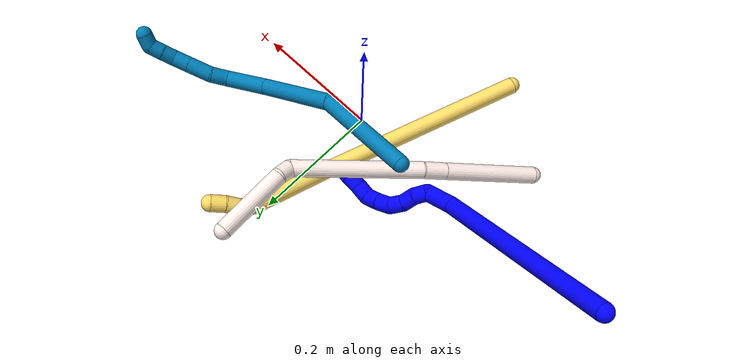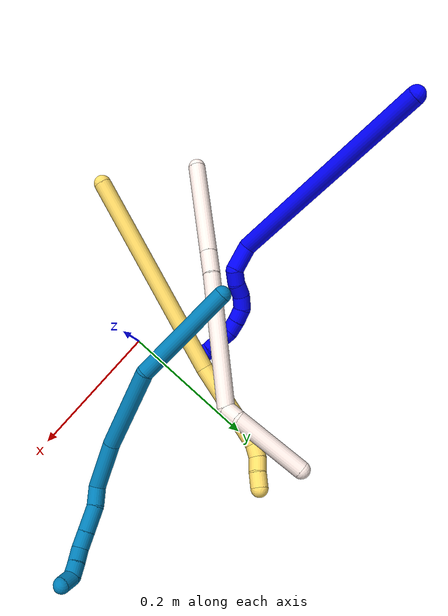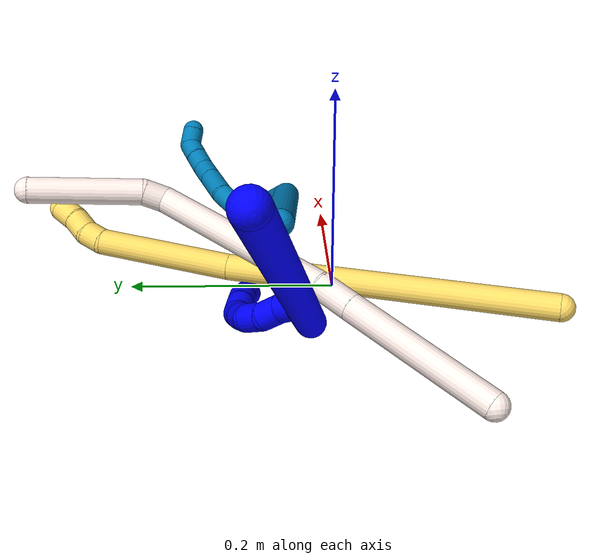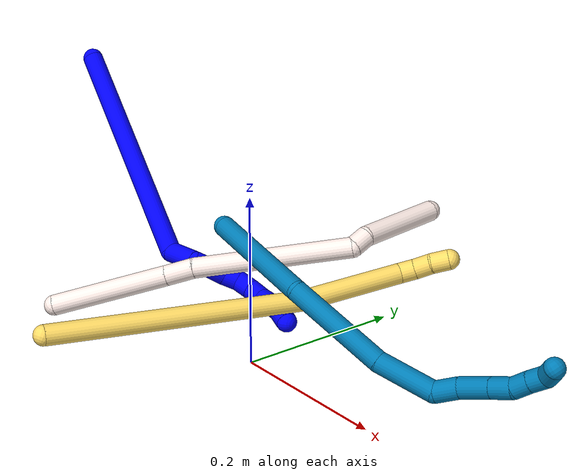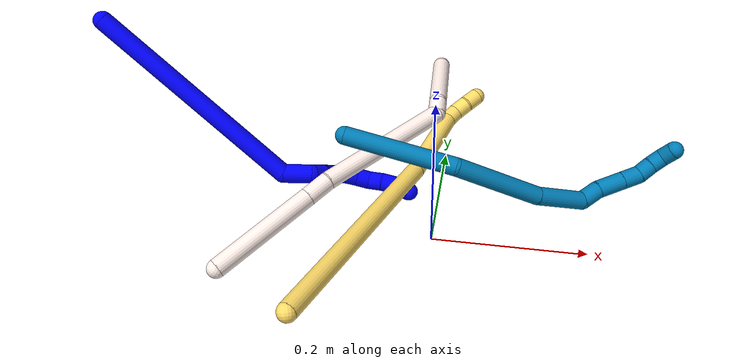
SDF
<sdf version="1.7">
 <world name="default">
  <model name="1">
   <static>0</static>
   <link name="1">
    <collision name="collision-cylinder-e_1_1_4">
     <pose>0.099642 0.033256 -0.108377 -2.84386 0.721064 -2.38436</pose>
     <geometry><cylinder><radius>0.0125</radius><length>0.301861</length></cylinder></geometry>
     <surface>
      <friction><ode><mu>1.16</mu><mu2>1.16</mu2><slip1>0</slip1><slip2>0</slip2></ode></friction>
      <contact><ode><kp>1e+06</kp><kd>1</kd><max_vel>0</max_vel><min_depth>0.001</min_depth></ode></contact>
     </surface>
    </collision>
    <visual name="visual-cylinder-e_1_1_4">
     <pose>0.099642 0.033256 -0.108377 -2.84386 0.721064 -2.38436</pose>
     <geometry><cylinder><radius>0.0125</radius><length>0.301861</length></cylinder></geometry>
     <material><ambient>0 0 1 1</ambient></material>
    </visual>
    <collision name="collision-cylinder-e_2_4_5">
     <pose>0.200756 0.066205 -0.235702 3.12536 0.077501 2.72889</pose>
     <geometry><cylinder><radius>0.0125</radius><length>0.038016</length></cylinder></geometry>
     <surface>
      <friction><ode><mu>1.16</mu><mu2>1.16</mu2><slip1>0</slip1><slip2>0</slip2></ode></friction>
      <contact><ode><kp>1e+06</kp><kd>1</kd><max_vel>0</max_vel><min_depth>0.001</min_depth></ode></contact>
     </surface>
    </collision>
    <visual name="visual-cylinder-e_2_4_5">
     <pose>0.200756 0.066205 -0.235702 3.12536 0.077501 2.72889</pose>
     <geometry><cylinder><radius>0.0125</radius><length>0.038016</length></cylinder></geometry>
     <material><ambient>0 0 1 1</ambient></material>
    </visual>
    <collision name="collision-cylinder-e_3_5_6">
     <pose>0.20568 0.059668 -0.261686 2.41683 0.352125 0.877498</pose>
     <geometry><cylinder><radius>0.0125</radius><length>0.020023</length></cylinder></geometry>
     <surface>
      <friction><ode><mu>1.16</mu><mu2>1.16</mu2><slip1>0</slip1><slip2>0</slip2></ode></friction>
      <contact><ode><kp>1e+06</kp><kd>1</kd><max_vel>0</max_vel><min_depth>0.001</min_depth></ode></contact>
     </surface>
    </collision>
    <visual name="visual-cylinder-e_3_5_6">
     <pose>0.20568 0.059668 -0.261686 2.41683 0.352125 0.877498</pose>
     <geometry><cylinder><radius>0.0125</radius><length>0.020023</length></cylinder></geometry>
     <material><ambient>0 0 1 1</ambient></material>
    </visual>
    <collision name="collision-cylinder-e_4_6_7">
     <pose>0.213589 0.045854 -0.273549 2.1377 0.460124 0.80669</pose>
     <geometry><cylinder><radius>0.0125</radius><length>0.020069</length></cylinder></geometry>
     <surface>
      <friction><ode><mu>1.16</mu><mu2>1.16</mu2><slip1>0</slip1><slip2>0</slip2></ode></friction>
      <contact><ode><kp>1e+06</kp><kd>1</kd><max_vel>0</max_vel><min_depth>0.001</min_depth></ode></contact>
     </surface>
    </collision>
    <visual name="visual-cylinder-e_4_6_7">
     <pose>0.213589 0.045854 -0.273549 2.1377 0.460124 0.80669</pose>
     <geometry><cylinder><radius>0.0125</radius><length>0.020069</length></cylinder></geometry>
     <material><ambient>0 0 1 1</ambient></material>
    </visual>
    <collision name="collision-cylinder-e_5_7_8">
     <pose>0.221045 0.03243 -0.285928 2.48332 0.3046 0.844664</pose>
     <geometry><cylinder><radius>0.0125</radius><length>0.020012</length></cylinder></geometry>
     <surface>
      <friction><ode><mu>1.16</mu><mu2>1.16</mu2><slip1>0</slip1><slip2>0</slip2></ode></friction>
      <contact><ode><kp>1e+06</kp><kd>1</kd><max_vel>0</max_vel><min_depth>0.001</min_depth></ode></contact>
     </surface>
    </collision>
    <visual name="visual-cylinder-e_5_7_8">
     <pose>0.221045 0.03243 -0.285928 2.48332 0.3046 0.844664</pose>
     <geometry><cylinder><radius>0.0125</radius><length>0.020012</length></cylinder></geometry>
     <material><ambient>0 0 1 1</ambient></material>
    </visual>
    <collision name="collision-cylinder-e_6_8_9">
     <pose>0.227448 0.025415 -0.302818 3.0164 0.346748 2.45424</pose>
     <geometry><cylinder><radius>0.0125</radius><length>0.020017</length></cylinder></geometry>
     <surface>
      <friction><ode><mu>1.16</mu><mu2>1.16</mu2><slip1>0</slip1><slip2>0</slip2></ode></friction>
      <contact><ode><kp>1e+06</kp><kd>1</kd><max_vel>0</max_vel><min_depth>0.001</min_depth></ode></contact>
     </surface>
    </collision>
    <visual name="visual-cylinder-e_6_8_9">
     <pose>0.227448 0.025415 -0.302818 3.0164 0.346748 2.45424</pose>
     <geometry><cylinder><radius>0.0125</radius><length>0.020017</length></cylinder></geometry>
     <material><ambient>0 0 1 1</ambient></material>
    </visual>
    <collision name="collision-cylinder-e_7_9_10">
     <pose>0.234321 0.024109 -0.321536 3.12766 0.354521 3.06387</pose>
     <geometry><cylinder><radius>0.0125</radius><length>0.020002</length></cylinder></geometry>
     <surface>
      <friction><ode><mu>1.16</mu><mu2>1.16</mu2><slip1>0</slip1><slip2>0</slip2></ode></friction>
      <contact><ode><kp>1e+06</kp><kd>1</kd><max_vel>0</max_vel><min_depth>0.001</min_depth></ode></contact>
     </surface>
    </collision>
    <visual name="visual-cylinder-e_7_9_10">
     <pose>0.234321 0.024109 -0.321536 3.12766 0.354521 3.06387</pose>
     <geometry><cylinder><radius>0.0125</radius><length>0.020002</length></cylinder></geometry>
     <material><ambient>0 0 1 1</ambient></material>
    </visual>
    <collision name="collision-cylinder-e_8_10_11">
     <pose>0.238072 0.027465 -0.340283 -2.78532 0.027963 -0.155014</pose>
     <geometry><cylinder><radius>0.0125</radius><length>0.02</length></cylinder></geometry>
     <surface>
      <friction><ode><mu>1.16</mu><mu2>1.16</mu2><slip1>0</slip1><slip2>0</slip2></ode></friction>
      <contact><ode><kp>1e+06</kp><kd>1</kd><max_vel>0</max_vel><min_depth>0.001</min_depth></ode></contact>
     </surface>
    </collision>
    <visual name="visual-cylinder-e_8_10_11">
     <pose>0.238072 0.027465 -0.340283 -2.78532 0.027963 -0.155014</pose>
     <geometry><cylinder><radius>0.0125</radius><length>0.02</length></cylinder></geometry>
     <material><ambient>0 0 1 1</ambient></material>
    </visual>
    <collision name="collision-cylinder-e_9_11_12">
     <pose>0.240265 0.033711 -0.359071 -2.85666 0.192472 -1.18474</pose>
     <geometry><cylinder><radius>0.0125</radius><length>0.02</length></cylinder></geometry>
     <surface>
      <friction><ode><mu>1.16</mu><mu2>1.16</mu2><slip1>0</slip1><slip2>0</slip2></ode></friction>
      <contact><ode><kp>1e+06</kp><kd>1</kd><max_vel>0</max_vel><min_depth>0.001</min_depth></ode></contact>
     </surface>
    </collision>
    <visual name="visual-cylinder-e_9_11_12">
     <pose>0.240265 0.033711 -0.359071 -2.85666 0.192472 -1.18474</pose>
     <geometry><cylinder><radius>0.0125</radius><length>0.02</length></cylinder></geometry>
     <material><ambient>0 0 1 1</ambient></material>
    </visual>
    <collision name="collision-cylinder-e_10_12_2">
     <pose>0.245589 0.04013 -0.377149 -2.7416 0.34809 -1.42901</pose>
     <geometry><cylinder><radius>0.0125</radius><length>0.02</length></cylinder></geometry>
     <surface>
      <friction><ode><mu>1.16</mu><mu2>1.16</mu2><slip1>0</slip1><slip2>0</slip2></ode></friction>
      <contact><ode><kp>1e+06</kp><kd>1</kd><max_vel>0</max_vel><min_depth>0.001</min_depth></ode></contact>
     </surface>
    </collision>
    <visual name="visual-cylinder-e_10_12_2">
     <pose>0.245589 0.04013 -0.377149 -2.7416 0.34809 -1.42901</pose>
     <geometry><cylinder><radius>0.0125</radius><length>0.02</length></cylinder></geometry>
     <material><ambient>0 0 1 1</ambient></material>
    </visual>
    <collision name="collision-sphere-2">
     <pose>0.249 0.043791 -0.385807 0 -0 0</pose>
     <geometry><sphere><radius>0.0125</radius></sphere></geometry>
     <surface>
      <friction><ode><mu>1.16</mu><mu2>1.16</mu2><slip1>0</slip1><slip2>0</slip2></ode></friction>
      <contact><ode><kp>1e+06</kp><kd>1</kd><max_vel>0</max_vel><min_depth>0.001</min_depth></ode></contact>
     </surface>
    </collision>
    <visual name="visual-sphere-2">
     <pose>0.249 0.043791 -0.385807 0 -0 0</pose>
     <geometry><sphere><radius>0.0125</radius></sphere></geometry>
     <material><ambient>0 0 1 1</ambient></material>
    </visual>
    <collision name="collision-sphere-12">
     <pose>0.242178 0.03647 -0.36849 0 -0 0</pose>
     <geometry><sphere><radius>0.0125</radius></sphere></geometry>
     <surface>
      <friction><ode><mu>1.16</mu><mu2>1.16</mu2><slip1>0</slip1><slip2>0</slip2></ode></friction>
      <contact><ode><kp>1e+06</kp><kd>1</kd><max_vel>0</max_vel><min_depth>0.001</min_depth></ode></contact>
     </surface>
    </collision>
    <visual name="visual-sphere-12">
     <pose>0.242178 0.03647 -0.36849 0 -0 0</pose>
     <geometry><sphere><radius>0.0125</radius></sphere></geometry>
     <material><ambient>0 0 1 1</ambient></material>
    </visual>
    <collision name="collision-sphere-11">
     <pose>0.238352 0.030952 -0.349651 0 -0 0</pose>
     <geometry><sphere><radius>0.0125</radius></sphere></geometry>
     <surface>
      <friction><ode><mu>1.16</mu><mu2>1.16</mu2><slip1>0</slip1><slip2>0</slip2></ode></friction>
      <contact><ode><kp>1e+06</kp><kd>1</kd><max_vel>0</max_vel><min_depth>0.001</min_depth></ode></contact>
     </surface>
    </collision>
    <visual name="visual-sphere-11">
     <pose>0.238352 0.030952 -0.349651 0 -0 0</pose>
     <geometry><sphere><radius>0.0125</radius></sphere></geometry>
     <material><ambient>0 0 1 1</ambient></material>
    </visual>
    <collision name="collision-sphere-10">
     <pose>0.237793 0.023979 -0.330914 0 -0 0</pose>
     <geometry><sphere><radius>0.0125</radius></sphere></geometry>
     <surface>
      <friction><ode><mu>1.16</mu><mu2>1.16</mu2><slip1>0</slip1><slip2>0</slip2></ode></friction>
      <contact><ode><kp>1e+06</kp><kd>1</kd><max_vel>0</max_vel><min_depth>0.001</min_depth></ode></contact>
     </surface>
    </collision>
    <visual name="visual-sphere-10">
     <pose>0.237793 0.023979 -0.330914 0 -0 0</pose>
     <geometry><sphere><radius>0.0125</radius></sphere></geometry>
     <material><ambient>0 0 1 1</ambient></material>
    </visual>
    <collision name="collision-sphere-9">
     <pose>0.230849 0.02424 -0.312158 0 -0 0</pose>
     <geometry><sphere><radius>0.0125</radius></sphere></geometry>
     <surface>
      <friction><ode><mu>1.16</mu><mu2>1.16</mu2><slip1>0</slip1><slip2>0</slip2></ode></friction>
      <contact><ode><kp>1e+06</kp><kd>1</kd><max_vel>0</max_vel><min_depth>0.001</min_depth></ode></contact>
     </surface>
    </collision>
    <visual name="visual-sphere-9">
     <pose>0.230849 0.02424 -0.312158 0 -0 0</pose>
     <geometry><sphere><radius>0.0125</radius></sphere></geometry>
     <material><ambient>0 0 1 1</ambient></material>
    </visual>
    <collision name="collision-sphere-4">
     <pose>0.199284 0.066513 -0.216754 0 -0 0</pose>
     <geometry><sphere><radius>0.0125</radius></sphere></geometry>
     <surface>
      <friction><ode><mu>1.16</mu><mu2>1.16</mu2><slip1>0</slip1><slip2>0</slip2></ode></friction>
      <contact><ode><kp>1e+06</kp><kd>1</kd><max_vel>0</max_vel><min_depth>0.001</min_depth></ode></contact>
     </surface>
    </collision>
    <visual name="visual-sphere-4">
     <pose>0.199284 0.066513 -0.216754 0 -0 0</pose>
     <geometry><sphere><radius>0.0125</radius></sphere></geometry>
     <material><ambient>0 0 1 1</ambient></material>
    </visual>
    <collision name="collision-sphere-1">
     <geometry><sphere><radius>0.0125</radius></sphere></geometry>
     <surface>
      <friction><ode><mu>1.16</mu><mu2>1.16</mu2><slip1>0</slip1><slip2>0</slip2></ode></friction>
      <contact><ode><kp>1e+06</kp><kd>1</kd><max_vel>0</max_vel><min_depth>0.001</min_depth></ode></contact>
     </surface>
    </collision>
    <visual name="visual-sphere-1">
     <geometry><sphere><radius>0.0125</radius></sphere></geometry>
     <material><ambient>0 0 1 1</ambient></material>
    </visual>
    <collision name="collision-sphere-8">
     <pose>0.224046 0.026591 -0.293479 0 -0 0</pose>
     <geometry><sphere><radius>0.0125</radius></sphere></geometry>
     <surface>
      <friction><ode><mu>1.16</mu><mu2>1.16</mu2><slip1>0</slip1><slip2>0</slip2></ode></friction>
      <contact><ode><kp>1e+06</kp><kd>1</kd><max_vel>0</max_vel><min_depth>0.001</min_depth></ode></contact>
     </surface>
    </collision>
    <visual name="visual-sphere-8">
     <pose>0.224046 0.026591 -0.293479 0 -0 0</pose>
     <geometry><sphere><radius>0.0125</radius></sphere></geometry>
     <material><ambient>0 0 1 1</ambient></material>
    </visual>
    <collision name="collision-sphere-5">
     <pose>0.202227 0.065897 -0.254651 0 -0 0</pose>
     <geometry><sphere><radius>0.0125</radius></sphere></geometry>
     <surface>
      <friction><ode><mu>1.16</mu><mu2>1.16</mu2><slip1>0</slip1><slip2>0</slip2></ode></friction>
      <contact><ode><kp>1e+06</kp><kd>1</kd><max_vel>0</max_vel><min_depth>0.001</min_depth></ode></contact>
     </surface>
    </collision>
    <visual name="visual-sphere-5">
     <pose>0.202227 0.065897 -0.254651 0 -0 0</pose>
     <geometry><sphere><radius>0.0125</radius></sphere></geometry>
     <material><ambient>0 0 1 1</ambient></material>
    </visual>
    <collision name="collision-sphere-6">
     <pose>0.209133 0.053438 -0.268721 0 -0 0</pose>
     <geometry><sphere><radius>0.0125</radius></sphere></geometry>
     <surface>
      <friction><ode><mu>1.16</mu><mu2>1.16</mu2><slip1>0</slip1><slip2>0</slip2></ode></friction>
      <contact><ode><kp>1e+06</kp><kd>1</kd><max_vel>0</max_vel><min_depth>0.001</min_depth></ode></contact>
     </surface>
    </collision>
    <visual name="visual-sphere-6">
     <pose>0.209133 0.053438 -0.268721 0 -0 0</pose>
     <geometry><sphere><radius>0.0125</radius></sphere></geometry>
     <material><ambient>0 0 1 1</ambient></material>
    </visual>
    <collision name="collision-sphere-7">
     <pose>0.218045 0.038269 -0.278378 0 -0 0</pose>
     <geometry><sphere><radius>0.0125</radius></sphere></geometry>
     <surface>
      <friction><ode><mu>1.16</mu><mu2>1.16</mu2><slip1>0</slip1><slip2>0</slip2></ode></friction>
      <contact><ode><kp>1e+06</kp><kd>1</kd><max_vel>0</max_vel><min_depth>0.001</min_depth></ode></contact>
     </surface>
    </collision>
    <visual name="visual-sphere-7">
     <pose>0.218045 0.038269 -0.278378 0 -0 0</pose>
     <geometry><sphere><radius>0.0125</radius></sphere></geometry>
     <material><ambient>0 0 1 1</ambient></material>
    </visual>
    <inertial>
     <pose>0.148513 0.036673 -0.184299 0 -0 0</pose>
     <mass>0.5</mass>
     <inertia>
      <ixx>-0.002426</ixx>
      <ixy>0</ixy>
      <ixz>0</ixz>
      <iyy>0.000731</iyy>
      <iyz>0</iyz>
      <izz>-0.002061</izz>
     </inertia>
    </inertial>
   </link>
   <pose>-0.439238 0.074641 0.245249 1.67638 1.42191 -1.24137</pose>
  </model>
  <model name="5">
   <static>0</static>
   <link name="5">
    <collision name="collision-cylinder-e_1_1_4">
     <pose>0.068675 0.115173 0.075042 -0.993326 0.463318 -0.254319</pose>
     <geometry><cylinder><radius>0.0125</radius><length>0.307326</length></cylinder></geometry>
     <surface>
      <friction><ode><mu>1.16</mu><mu2>1.16</mu2><slip1>0</slip1><slip2>0</slip2></ode></friction>
      <contact><ode><kp>1e+06</kp><kd>1</kd><max_vel>0</max_vel><min_depth>0.001</min_depth></ode></contact>
     </surface>
    </collision>
    <visual name="visual-cylinder-e_1_1_4">
     <pose>0.068675 0.115173 0.075042 -0.993326 0.463318 -0.254319</pose>
     <geometry><cylinder><radius>0.0125</radius><length>0.307326</length></cylinder></geometry>
     <material><ambient>1 0.858824 0.4 1</ambient></material>
    </visual>
    <collision name="collision-cylinder-e_2_4_5">
     <pose>0.16305 0.27503 0.188835 -0.856387 0.4099 -0.189191</pose>
     <geometry><cylinder><radius>0.0125</radius><length>0.128979</length></cylinder></geometry>
     <surface>
      <friction><ode><mu>1.16</mu><mu2>1.16</mu2><slip1>0</slip1><slip2>0</slip2></ode></friction>
      <contact><ode><kp>1e+06</kp><kd>1</kd><max_vel>0</max_vel><min_depth>0.001</min_depth></ode></contact>
     </surface>
    </collision>
    <visual name="visual-cylinder-e_2_4_5">
     <pose>0.16305 0.27503 0.188835 -0.856387 0.4099 -0.189191</pose>
     <geometry><cylinder><radius>0.0125</radius><length>0.128979</length></cylinder></geometry>
     <material><ambient>1 0.858824 0.4 1</ambient></material>
    </visual>
    <collision name="collision-cylinder-e_3_5_6">
     <pose>0.195431 0.324576 0.233328 -0.702649 0.726201 -0.276744</pose>
     <geometry><cylinder><radius>0.0125</radius><length>0.020122</length></cylinder></geometry>
     <surface>
      <friction><ode><mu>1.16</mu><mu2>1.16</mu2><slip1>0</slip1><slip2>0</slip2></ode></friction>
      <contact><ode><kp>1e+06</kp><kd>1</kd><max_vel>0</max_vel><min_depth>0.001</min_depth></ode></contact>
     </surface>
    </collision>
    <visual name="visual-cylinder-e_3_5_6">
     <pose>0.195431 0.324576 0.233328 -0.702649 0.726201 -0.276744</pose>
     <geometry><cylinder><radius>0.0125</radius><length>0.020122</length></cylinder></geometry>
     <material><ambient>1 0.858824 0.4 1</ambient></material>
    </visual>
    <collision name="collision-cylinder-e_4_6_7">
     <pose>0.211011 0.33164 0.244748 -0.369803 0.970529 -0.196622</pose>
     <geometry><cylinder><radius>0.0125</radius><length>0.021568</length></cylinder></geometry>
     <surface>
      <friction><ode><mu>1.16</mu><mu2>1.16</mu2><slip1>0</slip1><slip2>0</slip2></ode></friction>
      <contact><ode><kp>1e+06</kp><kd>1</kd><max_vel>0</max_vel><min_depth>0.001</min_depth></ode></contact>
     </surface>
    </collision>
    <visual name="visual-cylinder-e_4_6_7">
     <pose>0.211011 0.33164 0.244748 -0.369803 0.970529 -0.196622</pose>
     <geometry><cylinder><radius>0.0125</radius><length>0.021568</length></cylinder></geometry>
     <material><ambient>1 0.858824 0.4 1</ambient></material>
    </visual>
    <collision name="collision-cylinder-e_5_7_2">
     <pose>0.228458 0.338052 0.255928 -0.653497 0.889791 -0.320385</pose>
     <geometry><cylinder><radius>0.0125</radius><length>0.022005</length></cylinder></geometry>
     <surface>
      <friction><ode><mu>1.16</mu><mu2>1.16</mu2><slip1>0</slip1><slip2>0</slip2></ode></friction>
      <contact><ode><kp>1e+06</kp><kd>1</kd><max_vel>0</max_vel><min_depth>0.001</min_depth></ode></contact>
     </surface>
    </collision>
    <visual name="visual-cylinder-e_5_7_2">
     <pose>0.228458 0.338052 0.255928 -0.653497 0.889791 -0.320385</pose>
     <geometry><cylinder><radius>0.0125</radius><length>0.022005</length></cylinder></geometry>
     <material><ambient>1 0.858824 0.4 1</ambient></material>
    </visual>
    <collision name="collision-sphere-2">
     <pose>0.237006 0.342264 0.261427 0 -0 0</pose>
     <geometry><sphere><radius>0.0125</radius></sphere></geometry>
     <surface>
      <friction><ode><mu>1.16</mu><mu2>1.16</mu2><slip1>0</slip1><slip2>0</slip2></ode></friction>
      <contact><ode><kp>1e+06</kp><kd>1</kd><max_vel>0</max_vel><min_depth>0.001</min_depth></ode></contact>
     </surface>
    </collision>
    <visual name="visual-sphere-2">
     <pose>0.237006 0.342264 0.261427 0 -0 0</pose>
     <geometry><sphere><radius>0.0125</radius></sphere></geometry>
     <material><ambient>1 0.858824 0.4 1</ambient></material>
    </visual>
    <collision name="collision-sphere-7">
     <pose>0.21991 0.333841 0.250428 0 -0 0</pose>
     <geometry><sphere><radius>0.0125</radius></sphere></geometry>
     <surface>
      <friction><ode><mu>1.16</mu><mu2>1.16</mu2><slip1>0</slip1><slip2>0</slip2></ode></friction>
      <contact><ode><kp>1e+06</kp><kd>1</kd><max_vel>0</max_vel><min_depth>0.001</min_depth></ode></contact>
     </surface>
    </collision>
    <visual name="visual-sphere-7">
     <pose>0.21991 0.333841 0.250428 0 -0 0</pose>
     <geometry><sphere><radius>0.0125</radius></sphere></geometry>
     <material><ambient>1 0.858824 0.4 1</ambient></material>
    </visual>
    <collision name="collision-sphere-6">
     <pose>0.202112 0.329438 0.239069 0 -0 0</pose>
     <geometry><sphere><radius>0.0125</radius></sphere></geometry>
     <surface>
      <friction><ode><mu>1.16</mu><mu2>1.16</mu2><slip1>0</slip1><slip2>0</slip2></ode></friction>
      <contact><ode><kp>1e+06</kp><kd>1</kd><max_vel>0</max_vel><min_depth>0.001</min_depth></ode></contact>
     </surface>
    </collision>
    <visual name="visual-sphere-6">
     <pose>0.202112 0.329438 0.239069 0 -0 0</pose>
     <geometry><sphere><radius>0.0125</radius></sphere></geometry>
     <material><ambient>1 0.858824 0.4 1</ambient></material>
    </visual>
    <collision name="collision-sphere-5">
     <pose>0.18875 0.319715 0.227587 0 -0 0</pose>
     <geometry><sphere><radius>0.0125</radius></sphere></geometry>
     <surface>
      <friction><ode><mu>1.16</mu><mu2>1.16</mu2><slip1>0</slip1><slip2>0</slip2></ode></friction>
      <contact><ode><kp>1e+06</kp><kd>1</kd><max_vel>0</max_vel><min_depth>0.001</min_depth></ode></contact>
     </surface>
    </collision>
    <visual name="visual-sphere-5">
     <pose>0.18875 0.319715 0.227587 0 -0 0</pose>
     <geometry><sphere><radius>0.0125</radius></sphere></geometry>
     <material><ambient>1 0.858824 0.4 1</ambient></material>
    </visual>
    <collision name="collision-sphere-1">
     <geometry><sphere><radius>0.0125</radius></sphere></geometry>
     <surface>
      <friction><ode><mu>1.16</mu><mu2>1.16</mu2><slip1>0</slip1><slip2>0</slip2></ode></friction>
      <contact><ode><kp>1e+06</kp><kd>1</kd><max_vel>0</max_vel><min_depth>0.001</min_depth></ode></contact>
     </surface>
    </collision>
    <visual name="visual-sphere-1">
     <geometry><sphere><radius>0.0125</radius></sphere></geometry>
     <material><ambient>1 0.858824 0.4 1</ambient></material>
    </visual>
    <collision name="collision-sphere-4">
     <pose>0.13735 0.230346 0.150084 0 -0 0</pose>
     <geometry><sphere><radius>0.0125</radius></sphere></geometry>
     <surface>
      <friction><ode><mu>1.16</mu><mu2>1.16</mu2><slip1>0</slip1><slip2>0</slip2></ode></friction>
      <contact><ode><kp>1e+06</kp><kd>1</kd><max_vel>0</max_vel><min_depth>0.001</min_depth></ode></contact>
     </surface>
    </collision>
    <visual name="visual-sphere-4">
     <pose>0.13735 0.230346 0.150084 0 -0 0</pose>
     <geometry><sphere><radius>0.0125</radius></sphere></geometry>
     <material><ambient>1 0.858824 0.4 1</ambient></material>
    </visual>
    <inertial>
     <pose>0.111293 0.183983 0.126047 0 -0 0</pose>
     <mass>0.5</mass>
     <inertia>
      <ixx>0.001712</ixx>
      <ixy>0</ixy>
      <ixz>0</ixz>
      <iyy>0.001094</iyy>
      <iyz>0</iyz>
      <izz>-0.003094</izz>
     </inertia>
    </inertial>
   </link>
   <pose>-0.135861 -0.189545 0.038892 -0.665806 -0.154881 0.1372</pose>
  </model>
  <model name="9">
   <static>0</static>
   <link name="9">
    <collision name="collision-cylinder-e_1_1_4">
     <pose>0.049535 0.001622 0.057008 -0.028449 0.71518 -0.010631</pose>
     <geometry><cylinder><radius>0.0125</radius><length>0.15108</length></cylinder></geometry>
     <surface>
      <friction><ode><mu>1.16</mu><mu2>1.16</mu2><slip1>0</slip1><slip2>0</slip2></ode></friction>
      <contact><ode><kp>1e+06</kp><kd>1</kd><max_vel>0</max_vel><min_depth>0.001</min_depth></ode></contact>
     </surface>
    </collision>
    <visual name="visual-cylinder-e_1_1_4">
     <pose>0.049535 0.001622 0.057008 -0.028449 0.71518 -0.010631</pose>
     <geometry><cylinder><radius>0.0125</radius><length>0.15108</length></cylinder></geometry>
     <material><ambient>0 0.490196 0.709804 1</ambient></material>
    </visual>
    <collision name="collision-cylinder-e_2_4_5">
     <pose>0.120679 -0.006552 0.17254 0.165862 0.349216 0.029324</pose>
     <geometry><cylinder><radius>0.0125</radius><length>0.126301</length></cylinder></geometry>
     <surface>
      <friction><ode><mu>1.16</mu><mu2>1.16</mu2><slip1>0</slip1><slip2>0</slip2></ode></friction>
      <contact><ode><kp>1e+06</kp><kd>1</kd><max_vel>0</max_vel><min_depth>0.001</min_depth></ode></contact>
     </surface>
    </collision>
    <visual name="visual-cylinder-e_2_4_5">
     <pose>0.120679 -0.006552 0.17254 0.165862 0.349216 0.029324</pose>
     <geometry><cylinder><radius>0.0125</radius><length>0.126301</length></cylinder></geometry>
     <material><ambient>0 0.490196 0.709804 1</ambient></material>
    </visual>
    <collision name="collision-cylinder-e_3_5_6">
     <pose>0.156898 -0.028092 0.260928 0.374643 0.427275 0.082196</pose>
     <geometry><cylinder><radius>0.0125</radius><length>0.07052</length></cylinder></geometry>
     <surface>
      <friction><ode><mu>1.16</mu><mu2>1.16</mu2><slip1>0</slip1><slip2>0</slip2></ode></friction>
      <contact><ode><kp>1e+06</kp><kd>1</kd><max_vel>0</max_vel><min_depth>0.001</min_depth></ode></contact>
     </surface>
    </collision>
    <visual name="visual-cylinder-e_3_5_6">
     <pose>0.156898 -0.028092 0.260928 0.374643 0.427275 0.082196</pose>
     <geometry><cylinder><radius>0.0125</radius><length>0.07052</length></cylinder></geometry>
     <material><ambient>0 0.490196 0.709804 1</ambient></material>
    </visual>
    <collision name="collision-cylinder-e_4_6_7">
     <pose>0.179702 -0.050337 0.296083 1.10412 0.608542 0.382123</pose>
     <geometry><cylinder><radius>0.0125</radius><length>0.028664</length></cylinder></geometry>
     <surface>
      <friction><ode><mu>1.16</mu><mu2>1.16</mu2><slip1>0</slip1><slip2>0</slip2></ode></friction>
      <contact><ode><kp>1e+06</kp><kd>1</kd><max_vel>0</max_vel><min_depth>0.001</min_depth></ode></contact>
     </surface>
    </collision>
    <visual name="visual-cylinder-e_4_6_7">
     <pose>0.179702 -0.050337 0.296083 1.10412 0.608542 0.382123</pose>
     <geometry><cylinder><radius>0.0125</radius><length>0.028664</length></cylinder></geometry>
     <material><ambient>0 0.490196 0.709804 1</ambient></material>
    </visual>
    <collision name="collision-cylinder-e_5_7_8">
     <pose>0.201108 -0.070837 0.310251 0.844722 0.779458 0.365068</pose>
     <geometry><cylinder><radius>0.0125</radius><length>0.037595</length></cylinder></geometry>
     <surface>
      <friction><ode><mu>1.16</mu><mu2>1.16</mu2><slip1>0</slip1><slip2>0</slip2></ode></friction>
      <contact><ode><kp>1e+06</kp><kd>1</kd><max_vel>0</max_vel><min_depth>0.001</min_depth></ode></contact>
     </surface>
    </collision>
    <visual name="visual-cylinder-e_5_7_8">
     <pose>0.201108 -0.070837 0.310251 0.844722 0.779458 0.365068</pose>
     <geometry><cylinder><radius>0.0125</radius><length>0.037595</length></cylinder></geometry>
     <material><ambient>0 0.490196 0.709804 1</ambient></material>
    </visual>
    <collision name="collision-cylinder-e_6_8_9">
     <pose>0.223218 -0.087482 0.325092 0.839502 0.783568 0.364654</pose>
     <geometry><cylinder><radius>0.0125</radius><length>0.025212</length></cylinder></geometry>
     <surface>
      <friction><ode><mu>1.16</mu><mu2>1.16</mu2><slip1>0</slip1><slip2>0</slip2></ode></friction>
      <contact><ode><kp>1e+06</kp><kd>1</kd><max_vel>0</max_vel><min_depth>0.001</min_depth></ode></contact>
     </surface>
    </collision>
    <visual name="visual-cylinder-e_6_8_9">
     <pose>0.223218 -0.087482 0.325092 0.839502 0.783568 0.364654</pose>
     <geometry><cylinder><radius>0.0125</radius><length>0.025212</length></cylinder></geometry>
     <material><ambient>0 0.490196 0.709804 1</ambient></material>
    </visual>
    <collision name="collision-cylinder-e_7_9_10">
     <pose>0.239575 -0.100901 0.332677 1.33585 0.819782 0.660439</pose>
     <geometry><cylinder><radius>0.0125</radius><length>0.020408</length></cylinder></geometry>
     <surface>
      <friction><ode><mu>1.16</mu><mu2>1.16</mu2><slip1>0</slip1><slip2>0</slip2></ode></friction>
      <contact><ode><kp>1e+06</kp><kd>1</kd><max_vel>0</max_vel><min_depth>0.001</min_depth></ode></contact>
     </surface>
    </collision>
    <visual name="visual-cylinder-e_7_9_10">
     <pose>0.239575 -0.100901 0.332677 1.33585 0.819782 0.660439</pose>
     <geometry><cylinder><radius>0.0125</radius><length>0.020408</length></cylinder></geometry>
     <material><ambient>0 0.490196 0.709804 1</ambient></material>
    </visual>
    <collision name="collision-cylinder-e_8_10_11">
     <pose>0.25458 -0.113962 0.336499 1.23409 0.847399 0.619365</pose>
     <geometry><cylinder><radius>0.0125</radius><length>0.020133</length></cylinder></geometry>
     <surface>
      <friction><ode><mu>1.16</mu><mu2>1.16</mu2><slip1>0</slip1><slip2>0</slip2></ode></friction>
      <contact><ode><kp>1e+06</kp><kd>1</kd><max_vel>0</max_vel><min_depth>0.001</min_depth></ode></contact>
     </surface>
    </collision>
    <visual name="visual-cylinder-e_8_10_11">
     <pose>0.25458 -0.113962 0.336499 1.23409 0.847399 0.619365</pose>
     <geometry><cylinder><radius>0.0125</radius><length>0.020133</length></cylinder></geometry>
     <material><ambient>0 0.490196 0.709804 1</ambient></material>
    </visual>
    <collision name="collision-cylinder-e_9_11_2">
     <pose>0.271856 -0.121736 0.336704 2.50204 1.32047 2.33538</pose>
     <geometry><cylinder><radius>0.0125</radius><length>0.020087</length></cylinder></geometry>
     <surface>
      <friction><ode><mu>1.16</mu><mu2>1.16</mu2><slip1>0</slip1><slip2>0</slip2></ode></friction>
      <contact><ode><kp>1e+06</kp><kd>1</kd><max_vel>0</max_vel><min_depth>0.001</min_depth></ode></contact>
     </surface>
    </collision>
    <visual name="visual-cylinder-e_9_11_2">
     <pose>0.271856 -0.121736 0.336704 2.50204 1.32047 2.33538</pose>
     <geometry><cylinder><radius>0.0125</radius><length>0.020087</length></cylinder></geometry>
     <material><ambient>0 0.490196 0.709804 1</ambient></material>
    </visual>
    <collision name="collision-sphere-2">
     <pose>0.281586 -0.123221 0.334708 0 -0 0</pose>
     <geometry><sphere><radius>0.0125</radius></sphere></geometry>
     <surface>
      <friction><ode><mu>1.16</mu><mu2>1.16</mu2><slip1>0</slip1><slip2>0</slip2></ode></friction>
      <contact><ode><kp>1e+06</kp><kd>1</kd><max_vel>0</max_vel><min_depth>0.001</min_depth></ode></contact>
     </surface>
    </collision>
    <visual name="visual-sphere-2">
     <pose>0.281586 -0.123221 0.334708 0 -0 0</pose>
     <geometry><sphere><radius>0.0125</radius></sphere></geometry>
     <material><ambient>0 0.490196 0.709804 1</ambient></material>
    </visual>
    <collision name="collision-sphere-11">
     <pose>0.262125 -0.120251 0.3387 0 -0 0</pose>
     <geometry><sphere><radius>0.0125</radius></sphere></geometry>
     <surface>
      <friction><ode><mu>1.16</mu><mu2>1.16</mu2><slip1>0</slip1><slip2>0</slip2></ode></friction>
      <contact><ode><kp>1e+06</kp><kd>1</kd><max_vel>0</max_vel><min_depth>0.001</min_depth></ode></contact>
     </surface>
    </collision>
    <visual name="visual-sphere-11">
     <pose>0.262125 -0.120251 0.3387 0 -0 0</pose>
     <geometry><sphere><radius>0.0125</radius></sphere></geometry>
     <material><ambient>0 0.490196 0.709804 1</ambient></material>
    </visual>
    <collision name="collision-sphere-10">
     <pose>0.247034 -0.107673 0.334298 0 -0 0</pose>
     <geometry><sphere><radius>0.0125</radius></sphere></geometry>
     <surface>
      <friction><ode><mu>1.16</mu><mu2>1.16</mu2><slip1>0</slip1><slip2>0</slip2></ode></friction>
      <contact><ode><kp>1e+06</kp><kd>1</kd><max_vel>0</max_vel><min_depth>0.001</min_depth></ode></contact>
     </surface>
    </collision>
    <visual name="visual-sphere-10">
     <pose>0.247034 -0.107673 0.334298 0 -0 0</pose>
     <geometry><sphere><radius>0.0125</radius></sphere></geometry>
     <material><ambient>0 0.490196 0.709804 1</ambient></material>
    </visual>
    <collision name="collision-sphere-9">
     <pose>0.232116 -0.094129 0.331056 0 -0 0</pose>
     <geometry><sphere><radius>0.0125</radius></sphere></geometry>
     <surface>
      <friction><ode><mu>1.16</mu><mu2>1.16</mu2><slip1>0</slip1><slip2>0</slip2></ode></friction>
      <contact><ode><kp>1e+06</kp><kd>1</kd><max_vel>0</max_vel><min_depth>0.001</min_depth></ode></contact>
     </surface>
    </collision>
    <visual name="visual-sphere-9">
     <pose>0.232116 -0.094129 0.331056 0 -0 0</pose>
     <geometry><sphere><radius>0.0125</radius></sphere></geometry>
     <material><ambient>0 0.490196 0.709804 1</ambient></material>
    </visual>
    <collision name="collision-sphere-4">
     <pose>0.099071 0.003245 0.114015 0 -0 0</pose>
     <geometry><sphere><radius>0.0125</radius></sphere></geometry>
     <surface>
      <friction><ode><mu>1.16</mu><mu2>1.16</mu2><slip1>0</slip1><slip2>0</slip2></ode></friction>
      <contact><ode><kp>1e+06</kp><kd>1</kd><max_vel>0</max_vel><min_depth>0.001</min_depth></ode></contact>
     </surface>
    </collision>
    <visual name="visual-sphere-4">
     <pose>0.099071 0.003245 0.114015 0 -0 0</pose>
     <geometry><sphere><radius>0.0125</radius></sphere></geometry>
     <material><ambient>0 0.490196 0.709804 1</ambient></material>
    </visual>
    <collision name="collision-sphere-1">
     <geometry><sphere><radius>0.0125</radius></sphere></geometry>
     <surface>
      <friction><ode><mu>1.16</mu><mu2>1.16</mu2><slip1>0</slip1><slip2>0</slip2></ode></friction>
      <contact><ode><kp>1e+06</kp><kd>1</kd><max_vel>0</max_vel><min_depth>0.001</min_depth></ode></contact>
     </surface>
    </collision>
    <visual name="visual-sphere-1">
     <geometry><sphere><radius>0.0125</radius></sphere></geometry>
     <material><ambient>0 0.490196 0.709804 1</ambient></material>
    </visual>
    <collision name="collision-sphere-8">
     <pose>0.214321 -0.080835 0.319128 0 -0 0</pose>
     <geometry><sphere><radius>0.0125</radius></sphere></geometry>
     <surface>
      <friction><ode><mu>1.16</mu><mu2>1.16</mu2><slip1>0</slip1><slip2>0</slip2></ode></friction>
      <contact><ode><kp>1e+06</kp><kd>1</kd><max_vel>0</max_vel><min_depth>0.001</min_depth></ode></contact>
     </surface>
    </collision>
    <visual name="visual-sphere-8">
     <pose>0.214321 -0.080835 0.319128 0 -0 0</pose>
     <geometry><sphere><radius>0.0125</radius></sphere></geometry>
     <material><ambient>0 0.490196 0.709804 1</ambient></material>
    </visual>
    <collision name="collision-sphere-5">
     <pose>0.142286 -0.016349 0.231064 0 -0 0</pose>
     <geometry><sphere><radius>0.0125</radius></sphere></geometry>
     <surface>
      <friction><ode><mu>1.16</mu><mu2>1.16</mu2><slip1>0</slip1><slip2>0</slip2></ode></friction>
      <contact><ode><kp>1e+06</kp><kd>1</kd><max_vel>0</max_vel><min_depth>0.001</min_depth></ode></contact>
     </surface>
    </collision>
    <visual name="visual-sphere-5">
     <pose>0.142286 -0.016349 0.231064 0 -0 0</pose>
     <geometry><sphere><radius>0.0125</radius></sphere></geometry>
     <material><ambient>0 0.490196 0.709804 1</ambient></material>
    </visual>
    <collision name="collision-sphere-6">
     <pose>0.171509 -0.039835 0.290792 0 -0 0</pose>
     <geometry><sphere><radius>0.0125</radius></sphere></geometry>
     <surface>
      <friction><ode><mu>1.16</mu><mu2>1.16</mu2><slip1>0</slip1><slip2>0</slip2></ode></friction>
      <contact><ode><kp>1e+06</kp><kd>1</kd><max_vel>0</max_vel><min_depth>0.001</min_depth></ode></contact>
     </surface>
    </collision>
    <visual name="visual-sphere-6">
     <pose>0.171509 -0.039835 0.290792 0 -0 0</pose>
     <geometry><sphere><radius>0.0125</radius></sphere></geometry>
     <material><ambient>0 0.490196 0.709804 1</ambient></material>
    </visual>
    <collision name="collision-sphere-7">
     <pose>0.187895 -0.060839 0.301373 0 -0 0</pose>
     <geometry><sphere><radius>0.0125</radius></sphere></geometry>
     <surface>
      <friction><ode><mu>1.16</mu><mu2>1.16</mu2><slip1>0</slip1><slip2>0</slip2></ode></friction>
      <contact><ode><kp>1e+06</kp><kd>1</kd><max_vel>0</max_vel><min_depth>0.001</min_depth></ode></contact>
     </surface>
    </collision>
    <visual name="visual-sphere-7">
     <pose>0.187895 -0.060839 0.301373 0 -0 0</pose>
     <geometry><sphere><radius>0.0125</radius></sphere></geometry>
     <material><ambient>0 0.490196 0.709804 1</ambient></material>
    </visual>
    <inertial>
     <pose>0.13521 -0.031348 0.19496 0 -0 0</pose>
     <mass>0.5</mass>
     <inertia>
      <ixx>0.000453</ixx>
      <ixy>0</ixy>
      <ixz>0</ixz>
      <iyy>0.000505</iyy>
      <iyz>0</iyz>
      <izz>-0.00021</izz>
     </inertia>
    </inertial>
   </link>
   <pose>-0.123065 0.053763 0.114867 -2.72425 -0.620644 -0.355442</pose>
  </model>
  <model name="11">
   <static>0</static>
   <link name="11">
    <collision name="collision-cylinder-e_1_1_4">
     <pose>0.030387 0.044544 0.047319 -0.755202 0.437391 -0.175849</pose>
     <geometry><cylinder><radius>0.0125</radius><length>0.14348</length></cylinder></geometry>
     <surface>
      <friction><ode><mu>1.16</mu><mu2>1.16</mu2><slip1>0</slip1><slip2>0</slip2></ode></friction>
      <contact><ode><kp>1e+06</kp><kd>1</kd><max_vel>0</max_vel><min_depth>0.001</min_depth></ode></contact>
     </surface>
    </collision>
    <visual name="visual-cylinder-e_1_1_4">
     <pose>0.030387 0.044544 0.047319 -0.755202 0.437391 -0.175849</pose>
     <geometry><cylinder><radius>0.0125</radius><length>0.14348</length></cylinder></geometry>
     <material><ambient>1 0.933333 0.909804 1</ambient></material>
    </visual>
    <collision name="collision-cylinder-e_2_4_5">
     <pose>0.067875 0.099724 0.106065 -0.74954 0.426815 -0.170077</pose>
     <geometry><cylinder><radius>0.0125</radius><length>0.034301</length></cylinder></geometry>
     <surface>
      <friction><ode><mu>1.16</mu><mu2>1.16</mu2><slip1>0</slip1><slip2>0</slip2></ode></friction>
      <contact><ode><kp>1e+06</kp><kd>1</kd><max_vel>0</max_vel><min_depth>0.001</min_depth></ode></contact>
     </surface>
    </collision>
    <visual name="visual-cylinder-e_2_4_5">
     <pose>0.067875 0.099724 0.106065 -0.74954 0.426815 -0.170077</pose>
     <geometry><cylinder><radius>0.0125</radius><length>0.034301</length></cylinder></geometry>
     <material><ambient>1 0.933333 0.909804 1</ambient></material>
    </visual>
    <collision name="collision-cylinder-e_3_5_6">
     <pose>0.125541 0.169904 0.173489 -0.816096 0.554016 -0.244602</pose>
     <geometry><cylinder><radius>0.0125</radius><length>0.192227</length></cylinder></geometry>
     <surface>
      <friction><ode><mu>1.16</mu><mu2>1.16</mu2><slip1>0</slip1><slip2>0</slip2></ode></friction>
      <contact><ode><kp>1e+06</kp><kd>1</kd><max_vel>0</max_vel><min_depth>0.001</min_depth></ode></contact>
     </surface>
    </collision>
    <visual name="visual-cylinder-e_3_5_6">
     <pose>0.125541 0.169904 0.173489 -0.816096 0.554016 -0.244602</pose>
     <geometry><cylinder><radius>0.0125</radius><length>0.192227</length></cylinder></geometry>
     <material><ambient>1 0.933333 0.909804 1</ambient></material>
    </visual>
    <collision name="collision-cylinder-e_4_6_7">
     <pose>0.174748 0.239824 0.233532 -1.19882 -0.121362 0.082977</pose>
     <geometry><cylinder><radius>0.0125</radius><length>0.022441</length></cylinder></geometry>
     <surface>
      <friction><ode><mu>1.16</mu><mu2>1.16</mu2><slip1>0</slip1><slip2>0</slip2></ode></friction>
      <contact><ode><kp>1e+06</kp><kd>1</kd><max_vel>0</max_vel><min_depth>0.001</min_depth></ode></contact>
     </surface>
    </collision>
    <visual name="visual-cylinder-e_4_6_7">
     <pose>0.174748 0.239824 0.233532 -1.19882 -0.121362 0.082977</pose>
     <geometry><cylinder><radius>0.0125</radius><length>0.022441</length></cylinder></geometry>
     <material><ambient>1 0.933333 0.909804 1</ambient></material>
    </visual>
    <collision name="collision-cylinder-e_5_7_2">
     <pose>0.176893 0.303665 0.242166 -1.48524 0.065186 -0.059838</pose>
     <geometry><cylinder><radius>0.0125</radius><length>0.107551</length></cylinder></geometry>
     <surface>
      <friction><ode><mu>1.16</mu><mu2>1.16</mu2><slip1>0</slip1><slip2>0</slip2></ode></friction>
      <contact><ode><kp>1e+06</kp><kd>1</kd><max_vel>0</max_vel><min_depth>0.001</min_depth></ode></contact>
     </surface>
    </collision>
    <visual name="visual-cylinder-e_5_7_2">
     <pose>0.176893 0.303665 0.242166 -1.48524 0.065186 -0.059838</pose>
     <geometry><cylinder><radius>0.0125</radius><length>0.107551</length></cylinder></geometry>
     <material><ambient>1 0.933333 0.909804 1</ambient></material>
    </visual>
    <collision name="collision-sphere-2">
     <pose>0.180396 0.35713 0.246751 0 -0 0</pose>
     <geometry><sphere><radius>0.0125</radius></sphere></geometry>
     <surface>
      <friction><ode><mu>1.16</mu><mu2>1.16</mu2><slip1>0</slip1><slip2>0</slip2></ode></friction>
      <contact><ode><kp>1e+06</kp><kd>1</kd><max_vel>0</max_vel><min_depth>0.001</min_depth></ode></contact>
     </surface>
    </collision>
    <visual name="visual-sphere-2">
     <pose>0.180396 0.35713 0.246751 0 -0 0</pose>
     <geometry><sphere><radius>0.0125</radius></sphere></geometry>
     <material><ambient>1 0.933333 0.909804 1</ambient></material>
    </visual>
    <collision name="collision-sphere-7">
     <pose>0.17339 0.2502 0.23758 0 -0 0</pose>
     <geometry><sphere><radius>0.0125</radius></sphere></geometry>
     <surface>
      <friction><ode><mu>1.16</mu><mu2>1.16</mu2><slip1>0</slip1><slip2>0</slip2></ode></friction>
      <contact><ode><kp>1e+06</kp><kd>1</kd><max_vel>0</max_vel><min_depth>0.001</min_depth></ode></contact>
     </surface>
    </collision>
    <visual name="visual-sphere-7">
     <pose>0.17339 0.2502 0.23758 0 -0 0</pose>
     <geometry><sphere><radius>0.0125</radius></sphere></geometry>
     <material><ambient>1 0.933333 0.909804 1</ambient></material>
    </visual>
    <collision name="collision-sphere-6">
     <pose>0.176107 0.229447 0.229484 0 -0 0</pose>
     <geometry><sphere><radius>0.0125</radius></sphere></geometry>
     <surface>
      <friction><ode><mu>1.16</mu><mu2>1.16</mu2><slip1>0</slip1><slip2>0</slip2></ode></friction>
      <contact><ode><kp>1e+06</kp><kd>1</kd><max_vel>0</max_vel><min_depth>0.001</min_depth></ode></contact>
     </surface>
    </collision>
    <visual name="visual-sphere-6">
     <pose>0.176107 0.229447 0.229484 0 -0 0</pose>
     <geometry><sphere><radius>0.0125</radius></sphere></geometry>
     <material><ambient>1 0.933333 0.909804 1</ambient></material>
    </visual>
    <collision name="collision-sphere-5">
     <pose>0.074975 0.110361 0.117493 0 -0 0</pose>
     <geometry><sphere><radius>0.0125</radius></sphere></geometry>
     <surface>
      <friction><ode><mu>1.16</mu><mu2>1.16</mu2><slip1>0</slip1><slip2>0</slip2></ode></friction>
      <contact><ode><kp>1e+06</kp><kd>1</kd><max_vel>0</max_vel><min_depth>0.001</min_depth></ode></contact>
     </surface>
    </collision>
    <visual name="visual-sphere-5">
     <pose>0.074975 0.110361 0.117493 0 -0 0</pose>
     <geometry><sphere><radius>0.0125</radius></sphere></geometry>
     <material><ambient>1 0.933333 0.909804 1</ambient></material>
    </visual>
    <collision name="collision-sphere-1">
     <geometry><sphere><radius>0.0125</radius></sphere></geometry>
     <surface>
      <friction><ode><mu>1.16</mu><mu2>1.16</mu2><slip1>0</slip1><slip2>0</slip2></ode></friction>
      <contact><ode><kp>1e+06</kp><kd>1</kd><max_vel>0</max_vel><min_depth>0.001</min_depth></ode></contact>
     </surface>
    </collision>
    <visual name="visual-sphere-1">
     <geometry><sphere><radius>0.0125</radius></sphere></geometry>
     <material><ambient>1 0.933333 0.909804 1</ambient></material>
    </visual>
    <collision name="collision-sphere-4">
     <pose>0.060775 0.089088 0.094637 0 -0 0</pose>
     <geometry><sphere><radius>0.0125</radius></sphere></geometry>
     <surface>
      <friction><ode><mu>1.16</mu><mu2>1.16</mu2><slip1>0</slip1><slip2>0</slip2></ode></friction>
      <contact><ode><kp>1e+06</kp><kd>1</kd><max_vel>0</max_vel><min_depth>0.001</min_depth></ode></contact>
     </surface>
    </collision>
    <visual name="visual-sphere-4">
     <pose>0.060775 0.089088 0.094637 0 -0 0</pose>
     <geometry><sphere><radius>0.0125</radius></sphere></geometry>
     <material><ambient>1 0.933333 0.909804 1</ambient></material>
    </visual>
    <inertial>
     <pose>0.107534 0.161027 0.150125 0 -0 0</pose>
     <mass>0.5</mass>
     <inertia>
      <ixx>0.000676</ixx>
      <ixy>0</ixy>
      <ixz>0</ixz>
      <iyy>0.000519</iyy>
      <iyz>0</iyz>
      <izz>-0.001051</izz>
     </inertia>
    </inertial>
   </link>
   <pose>-0.251038 -0.10896 0.011946 0.016364 0.629744 0.168284</pose>
  </model>
 </world>
</sdf>
